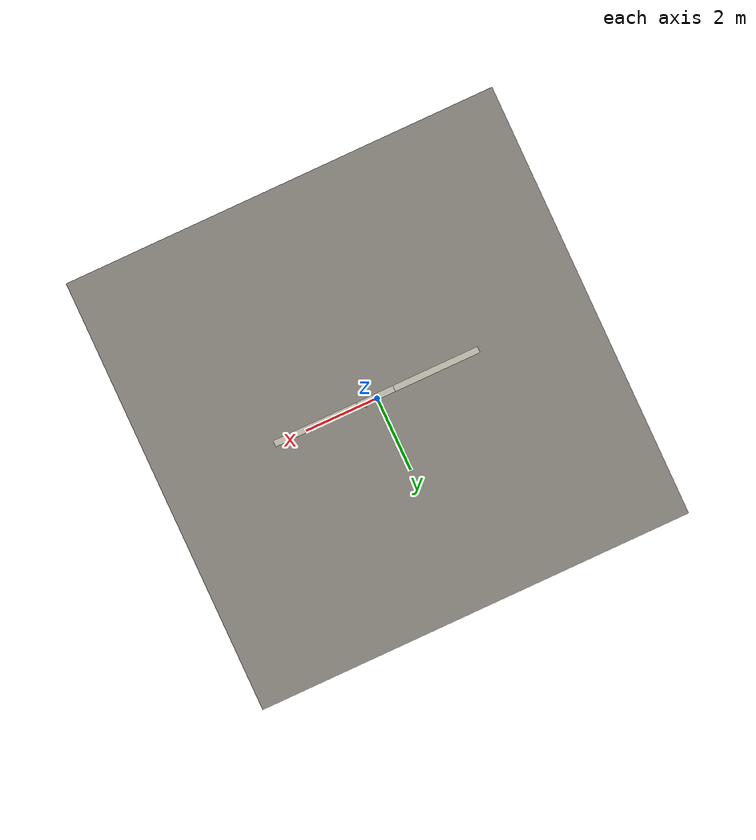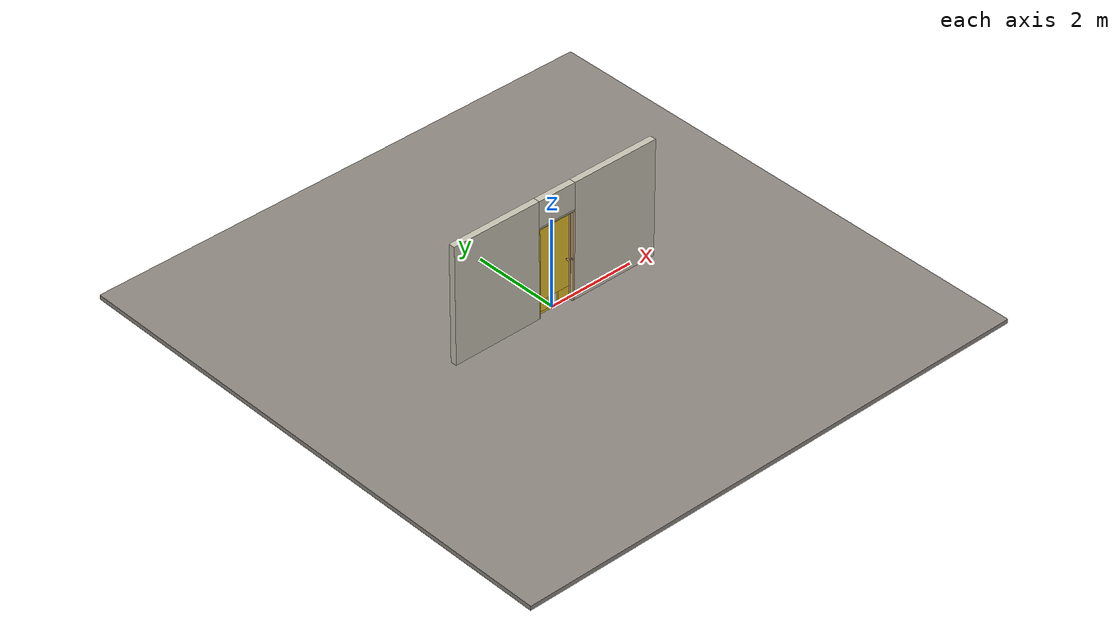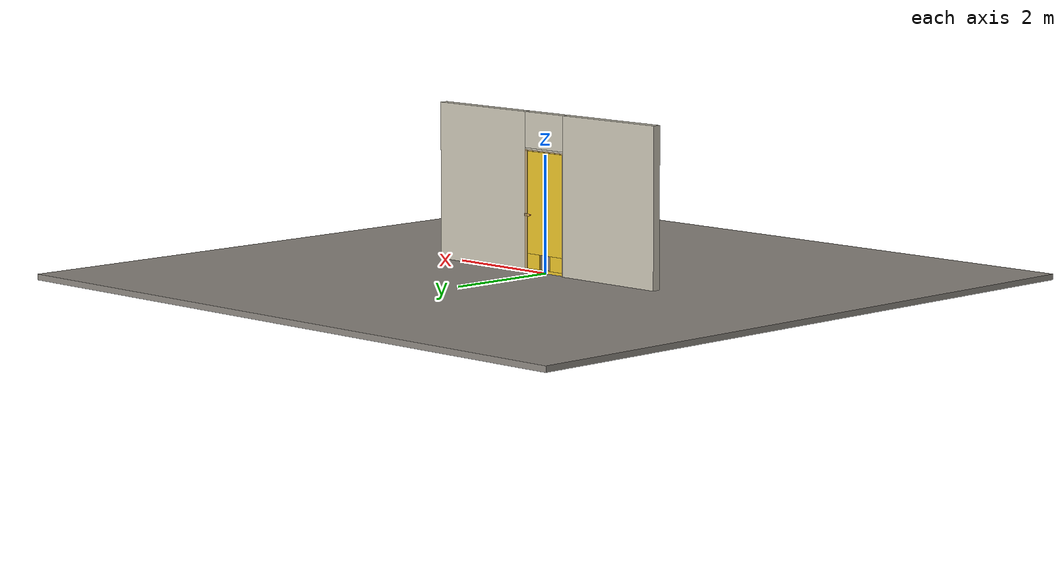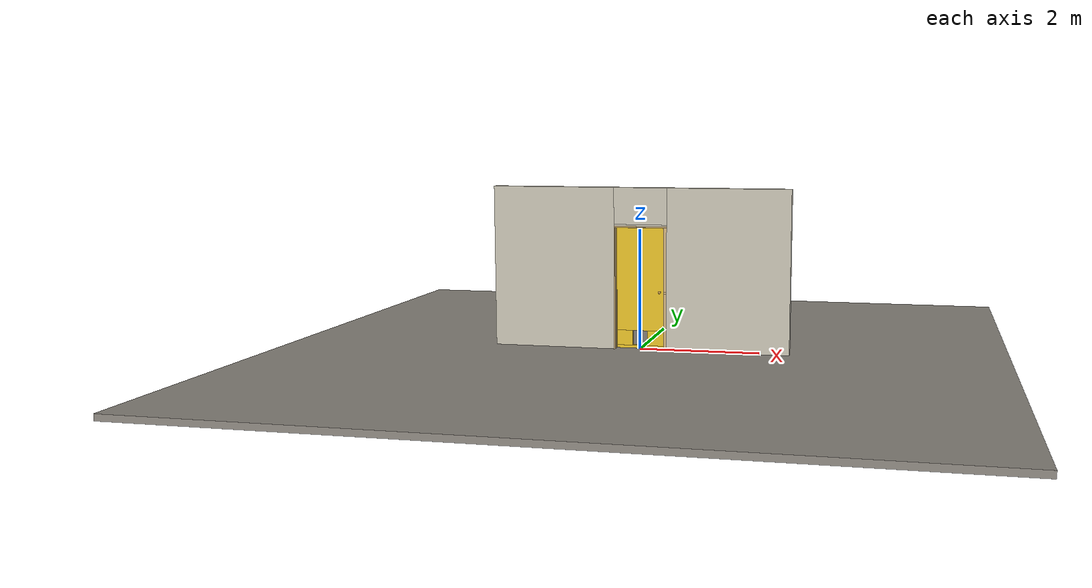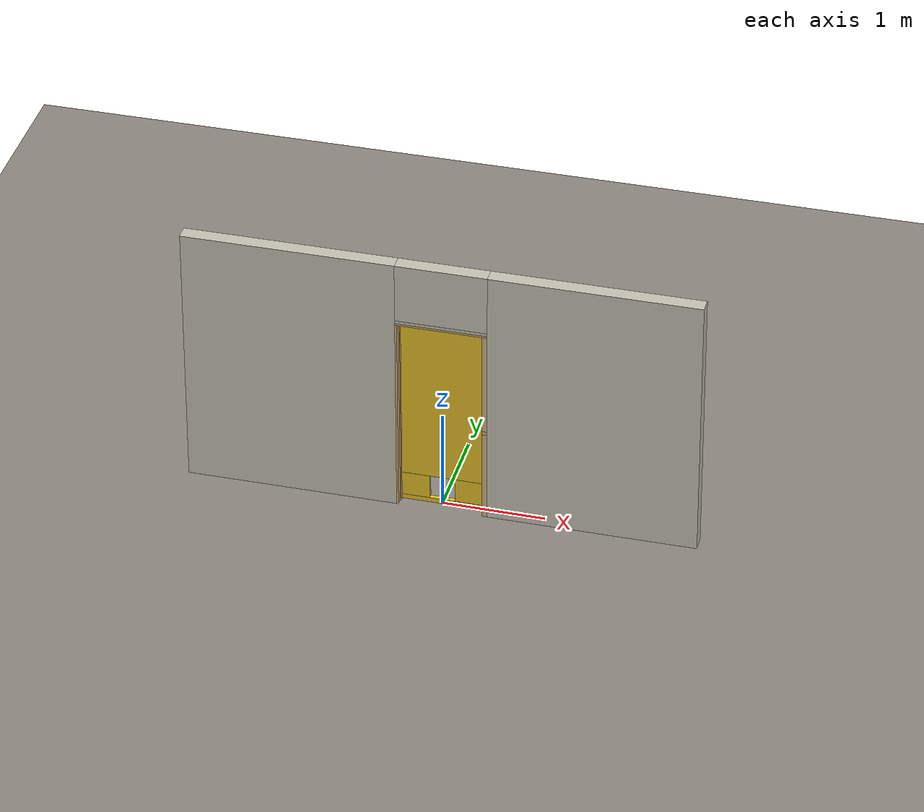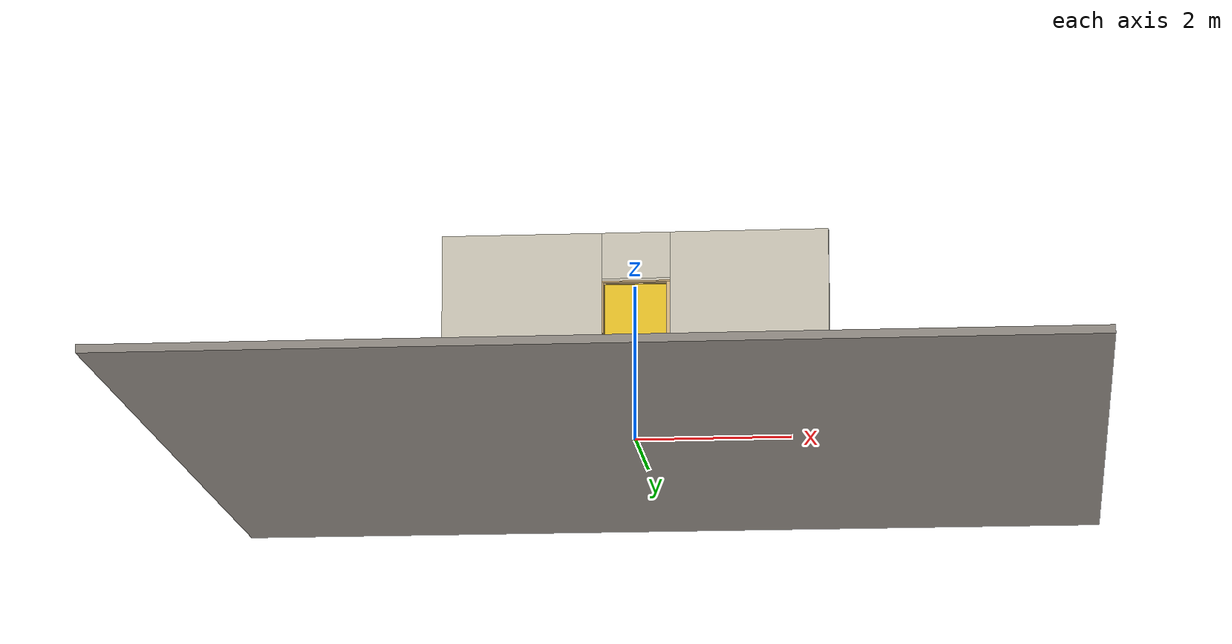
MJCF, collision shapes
<?xml version="1.0" ?>
<mujoco model="db0592_swing_single_minimal">
  <compiler angle="radian" meshdir="../../hardware" texturedir="../../textures" autolimits="true" inertiafromgeom="false"/>
  <option timestep="0.002" integrator="implicitfast" cone="elliptic" impratio="10" noslip_iterations="3">
    <flag multiccd="enable"/>
  </option>
  <size memory="16M"/>
  <default>
    <geom condim="4" solref="0.005 1" solimp="0.95 0.99 0.001"/>
    <joint solreflimit="0.005 1" solimplimit="0.95 0.99 0.001"/>
    <tendon solreflimit="0.005 1"/>
    <equality solref="0.002 1"/>
  </default>
  <visual>
    <headlight ambient="0.4 0.4 0.4" diffuse="0.7 0.7 0.7" specular="0.2 0.2 0.2"/>
    <quality shadowsize="4096"/>
    <map znear="0.01" zfar="60"/>
  </visual>
  <asset>
    <mesh name="knob_d1888f6f03" file="knob_d1888f6f03.obj"/>
    <material name="mat_floor" rgba="0.55 0.53 0.5 1" specular="0.2" shininess="0.15" reflectance="0"/>
    <material name="mat_wall" rgba="0.78 0.76 0.7 1" specular="0.2" shininess="0.1" reflectance="0"/>
    <material name="mat_leaf" rgba="0.9 0.75 0.15 1" specular="0.2" shininess="0.34" reflectance="0"/>
    <material name="mat_glass" rgba="0.85 0.92 0.95 0.25" specular="0.2" shininess="0.95" reflectance="0.1"/>
    <material name="mat_hinge" rgba="0.65 0.66 0.68 1" specular="0.74" shininess="0.5" reflectance="0.36"/>
    <material name="mat_op_brass" rgba="0.85 0.66 0.3 1" specular="0.8" shininess="0.75" reflectance="0.4"/>
    <material name="mat_trim" rgba="0.85 0.66 0.3 1" specular="0.8" shininess="0.75" reflectance="0.4"/>
    <material name="mat_keyway" rgba="0.05 0.05 0.05 1" specular="0.2" shininess="0.5" reflectance="0"/>
    <material name="mat_bolt" rgba="0.85 0.66 0.3 1" specular="0.8" shininess="0.75" reflectance="0.4"/>
    <material name="mat_frame" rgba="0.82 0.7 0.5 1" specular="0.2" shininess="0.45" reflectance="0"/>
    <material name="mat_seal" rgba="0.1 0.1 0.1 1" specular="0.2" shininess="0.1" reflectance="0"/>
    <material name="mat_transom" rgba="0.85 0.92 0.95 0.25" specular="0.2" shininess="0.95" reflectance="0.1"/>
    <material name="mat_petframe" rgba="0.92 0.92 0.9 1" specular="0.2" shininess="0.6" reflectance="0"/>
    <material name="mat_petflap" rgba="0.85 0.9 0.95 0.45" specular="0.2" shininess="0.7" reflectance="0.1"/>
    <texture name="skybox" type="skybox" builtin="gradient" rgb1="0.6 0.7 0.85" rgb2="0.9 0.92 0.95" width="256" height="256"/>
  </asset>
  <worldbody>
    <light name="sun" pos="1.5 -2.5 4" dir="-0.3 0.5 -0.8" directional="true" diffuse="0.8 0.8 0.8" specular="0.3 0.3 0.3" castshadow="true"/>
    <light name="fill" pos="-1.5 2.5 3" dir="0.3 -0.5 -0.7" directional="true" diffuse="0.35 0.35 0.4" castshadow="false"/>
    <camera name="robot_view" pos="0 -2.585687 1.734312" xyaxes="1 0 0 0 0.26963 0.962964" fovy="52"/>
    <camera name="far_view" pos="0 2.498687 1.734312" xyaxes="-1 0 0 0 -0.26963 0.962964" fovy="52"/>
    <camera name="iso" pos="1.932062 -2.178937 2.141063" xyaxes="0.741536 0.670913 0 -0.242917 0.268487 0.932151" fovy="46"/>
    <camera name="detail_handle" pos="0.5155 -0.8685 1.245" xyaxes="0.97561 0.219512 0 -0.070934 0.315262 0.94635" fovy="38"/>
    <geom name="floor" type="box" size="6 6 0.05" pos="0 0 -0.05" material="mat_floor" group="0" contype="1" conaffinity="1" friction="0.8 0.005 0.0001" density="2400"/>
    <geom name="wall_left" type="box" size="1.03525 0.0725 1.35" pos="-1.46475 -0.0435 1.35" material="mat_wall" group="0" contype="1" conaffinity="1" friction="0.6 0.005 0.0001" density="800"/>
    <geom name="wall_right" type="box" size="1.02025 0.0725 1.35" pos="1.47975 -0.0435 1.35" material="mat_wall" group="0" contype="1" conaffinity="1" friction="0.6 0.005 0.0001" density="800"/>
    <geom name="wall_header" type="box" size="0.4445 0.0725 0.303" pos="0.015 -0.0435 2.397" material="mat_wall" group="0" contype="1" conaffinity="1" friction="0.6 0.005 0.0001" density="800"/>
    <geom name="jamb_hinge" type="box" size="0.0095 0.0725 1.0225" pos="-0.42 -0.0435 1.0225" material="mat_frame" group="0" contype="1" conaffinity="1" friction="0.6 0.005 0.0001" density="400"/>
    <geom name="strike_965_wall_n" type="box" size="0.0245 0.05325 0.0183" pos="0.435 -0.06275 0.965" material="mat_frame" group="0" contype="1" conaffinity="1" friction="0.6 0.005 0.0001" density="400"/>
    <geom name="strike_965_wall_p" type="box" size="0.0245 0.008 0.0183" pos="0.435 0.0175 0.965" material="mat_frame" group="0" contype="1" conaffinity="1" friction="0.6 0.005 0.0001" density="400"/>
    <geom name="strike_965_ramp" type="box" size="0.0245 0.018028 0.0183" pos="0.440885 0.02691 0.965" quat="0.957092 0 0 -0.289784" material="mat_frame" group="0" contype="1" conaffinity="1" friction="0.12 0.005 0.0001" density="400"/>
    <geom name="strike_965_back" type="box" size="0.013 0.0095 0.0183" pos="0.4465 0 0.965" material="mat_frame" group="0" contype="1" conaffinity="1" friction="0.6 0.005 0.0001" density="400"/>
    <geom name="jamb_strike_0" type="box" size="0.0245 0.0725 0.47335" pos="0.435 -0.0435 0.47335" material="mat_frame" group="0" contype="1" conaffinity="1" friction="0.6 0.005 0.0001" density="400"/>
    <geom name="jamb_strike_1" type="box" size="0.0245 0.0725 0.53085" pos="0.435 -0.0435 1.51415" material="mat_frame" group="0" contype="1" conaffinity="1" friction="0.6 0.005 0.0001" density="400"/>
    <geom name="jamb_head" type="box" size="0.4445 0.0725 0.0095" pos="0.015 -0.0435 2.0545" material="mat_frame" group="0" contype="1" conaffinity="1" friction="0.6 0.005 0.0001" density="400"/>
    <geom name="head_stud" type="box" size="0.4445 0.0725 0.015" pos="0.015 -0.0435 2.079" material="mat_wall" group="0" contype="1" conaffinity="1" friction="0.6 0.005 0.0001" density="500"/>
    <geom name="stop_hinge" type="box" size="0.0055 0.016 1.0225" pos="-0.405 -0.0385 1.0225" material="mat_frame" group="0" contype="1" conaffinity="1" friction="0.6 0.005 0.0001" density="400"/>
    <geom name="stop_strike" type="box" size="0.0055 0.016 1.0225" pos="0.405 -0.0385 1.0225" material="mat_frame" group="0" contype="1" conaffinity="1" friction="0.6 0.005 0.0001" density="400"/>
    <geom name="stop_head" type="box" size="0.4105 0.016 0.0055" pos="0 -0.0385 2.0395" material="mat_frame" group="0" contype="1" conaffinity="1" friction="0.6 0.005 0.0001" density="400"/>
    <site name="approach_point" pos="0 -1.5 0" quat="1 0 0 0" size="0.05" rgba="0.2 0.9 0.2 0.5" group="4"/>
    <site name="goal_point" pos="0 1.5 0" quat="1 0 0 0" size="0.05" rgba="0.2 0.9 0.2 0.5" group="4"/>
    <site name="door_plane_center" pos="0 0 1.0225" quat="1 0 0 0" size="0.02" rgba="0.2 0.9 0.2 0.5" group="4"/>
    <body name="leaf" pos="-0.4105 0 0">
      <inertial pos="0.4095 0 1.058621" mass="24.857503" quat="-0.5 0.5 0.5 0.5" diaginertia="1.422656768 8.162837748 9.577473829"/>
      <joint name="leaf_hinge" type="hinge" axis="0 0 1" pos="0.003 0.029 0" limited="true" range="0 1.919862" solreflimit="0.02 1" damping="0.210326" frictionloss="1.588611" armature="0.02"/>
      <geom name="leaf_slab_below" type="box" size="0.4065 0.022 0.0245" pos="0.4095 0 0.0335" material="mat_leaf" group="0" contype="1" conaffinity="1" friction="0.4 0.005 0.0001" density="1"/>
      <geom name="leaf_slab_above" type="box" size="0.4065 0.022 0.8655" pos="0.4095 0 1.1755" material="mat_leaf" group="0" contype="1" conaffinity="1" friction="0.4 0.005 0.0001" density="1"/>
      <geom name="leaf_slab_left" type="box" size="0.14025 0.022 0.126" pos="0.14325 0 0.184" material="mat_leaf" group="0" contype="1" conaffinity="1" friction="0.4 0.005 0.0001" density="1"/>
      <geom name="leaf_slab_right" type="box" size="0.14025 0.022 0.126" pos="0.67575 0 0.184" material="mat_leaf" group="0" contype="1" conaffinity="1" friction="0.4 0.005 0.0001" density="1"/>
      <site name="leaf_edge_mid" pos="0.816 0 1.016" quat="1 0 0 0" size="0.02" rgba="0.2 0.9 0.2 0.5" group="4"/>
      <body name="leaf_handle" pos="0.746 0 0.965">
        <inertial pos="0 0 0" mass="1.098683" quat="-0.5 0.5 -0.5 0.5" diaginertia="0.000311555 0.004248143 0.004248143"/>
        <joint name="leaf_handle_hinge" type="hinge" axis="0 -1 0" limited="true" range="0 0.87" damping="0.143616" frictionloss="0.038" stiffness="0.5" springref="-0.5" armature="0.01"/>
        <geom name="leaf_handle_knob_n" type="mesh" mesh="knob_d1888f6f03" pos="0 -0.022 0" quat="0.707107 0.707107 0 0" material="mat_op_brass" group="1" contype="0" conaffinity="0" density="3000"/>
        <geom name="leaf_handle_knob_col_n" type="sphere" size="0.0243" pos="0 -0.0685 0" material="mat_op_brass" group="0" contype="1" conaffinity="1" friction="0.9 0.01 0.0001" density="3000"/>
        <geom name="leaf_handle_knob_neck_n" type="cylinder" size="0.011 0.012" pos="0 -0.034 0" quat="0.707107 -0.707107 0 0" material="mat_op_brass" group="3" contype="1" conaffinity="1" rgba="0.8 0.3 0.3 0.25" friction="0.6 0.005 0.0001" density="3000"/>
        <geom name="leaf_handle_knob_p" type="mesh" mesh="knob_d1888f6f03" pos="0 0.022 0" quat="-0.707107 0.707107 0 0" material="mat_op_brass" group="1" contype="0" conaffinity="0" density="3000"/>
        <geom name="leaf_handle_knob_col_p" type="sphere" size="0.0243" pos="0 0.0685 0" material="mat_op_brass" group="0" contype="1" conaffinity="1" friction="0.9 0.01 0.0001" density="3000"/>
        <geom name="leaf_handle_knob_neck_p" type="cylinder" size="0.011 0.012" pos="0 0.034 0" quat="0.707107 -0.707107 0 0" material="mat_op_brass" group="3" contype="1" conaffinity="1" rgba="0.8 0.3 0.3 0.25" friction="0.6 0.005 0.0001" density="3000"/>
        <site name="leaf_handle_grip_n" pos="0 -0.0685 0" quat="1 0 0 0" size="0.012" rgba="0.2 0.9 0.2 0.5" group="4"/>
        <site name="leaf_handle_grip_p" pos="0 0.0685 0" quat="1 0 0 0" size="0.012" rgba="0.2 0.9 0.2 0.5" group="4"/>
      </body>
      <body name="leaf_latch_bolt" pos="0.816 0 0.965">
        <inertial pos="-0.0055 0 0" mass="0.074627" quat="0.92388 -0.382683 0 0" diaginertia="0.000002271 0.000013255 0.000013255"/>
        <joint name="leaf_latch_bolt_slide" type="slide" axis="-1 0 0" limited="true" range="0 0.019" damping="2" frictionloss="0.3" stiffness="600" springref="-0.01" armature="0.1"/>
        <geom name="leaf_latch_bolt_capsule" type="capsule" size="0.008 0.0165" pos="-0.0055 0 0" quat="0.707107 0 0.707107 0" material="mat_bolt" group="0" contype="1" conaffinity="1" friction="0.2 0.005 0.0001" density="8500"/>
      </body>
    </body>
  </worldbody>
  <tendon>
    <fixed name="leaf_latch_bolt_coupling" limited="true" range="0 10">
      <joint joint="leaf_latch_bolt_slide" coef="1"/>
      <joint joint="leaf_handle_hinge" coef="-0.023457"/>
    </fixed>
  </tendon>
  <sensor>
    <jointpos name="leaf_hinge_pos" joint="leaf_hinge"/>
    <jointvel name="leaf_hinge_vel" joint="leaf_hinge"/>
    <jointpos name="leaf_handle_hinge_pos" joint="leaf_handle_hinge"/>
    <jointvel name="leaf_handle_hinge_vel" joint="leaf_handle_hinge"/>
    <jointpos name="leaf_latch_bolt_slide_pos" joint="leaf_latch_bolt_slide"/>
    <jointvel name="leaf_latch_bolt_slide_vel" joint="leaf_latch_bolt_slide"/>
  </sensor>
</mujoco>
